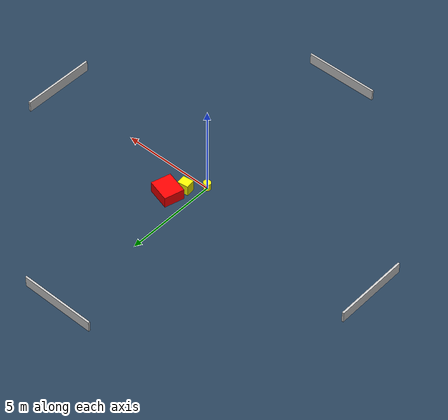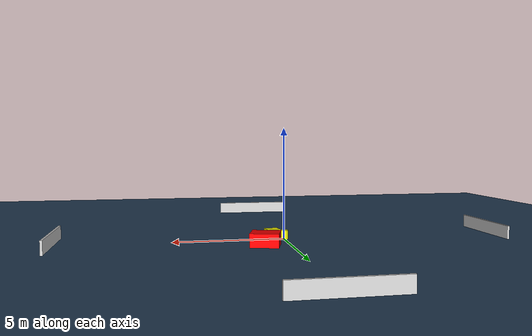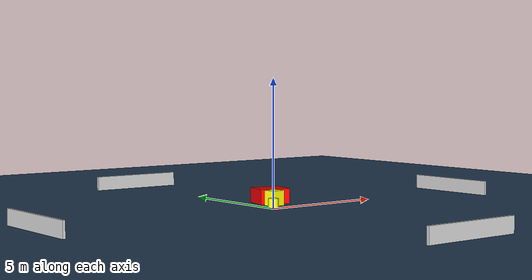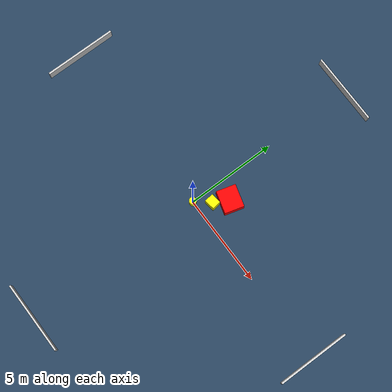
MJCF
<?xml version="1.0" ?>
<mujoco model="generated_environment">
  <option timestep="0.01" integrator="RK4" cone="elliptic"/>
  <default>
    <geom density="1"/>
  </default>
  <asset>
    <texture builtin="gradient" height="3072" name="skybox" rgb1="0.3 0.5 0.7" rgb2="0 0 0" type="skybox" width="512"/>
    <texture builtin="checker" height="300" name="groundplane" rgb1="0.2 0.3 0.4" rgb2="0.1 0.2 0.3" type="2d" width="300"/>
    <material name="groundplane" reflectance="0.2" texrepeat="5 5" texture="groundplane"/>
  </asset>
  <worldbody>
    <light dir="0 0 -1" directional="true" pos="0 0 1.5"/>
    <geom condim="3" friction="0.5 0.005 0.001" material="groundplane" name="floor" pos="0 0 0" size="0 0 0.05" type="plane"/>
    <body name="walls">
      <geom name="wall_1" condim="4" pos="-10.0 0.0 0.3" rgba="0.800000011920929 0.800000011920929 0.800000011920929 1.0" size="0.05 2.0 0.3" type="box"/>
      <geom name="wall_2" condim="4" pos="10.0 0.0 0.3" rgba="0.800000011920929 0.800000011920929 0.800000011920929 1.0" size="0.05 2.0 0.3" type="box"/>
      <geom name="wall_3" condim="4" pos="0.0 -10.0 0.3" rgba="0.800000011920929 0.800000011920929 0.800000011920929 1.0" size="2.0 0.05 0.3" type="box"/>
      <geom name="wall_4" condim="4" pos="0.0 10.0 0.3" rgba="0.800000011920929 0.800000011920929 0.800000011920929 1.0" size="2.0 0.05 0.3" type="box"/>
    </body>
    <body name="robot">
      <joint name="joint_x" type="slide" pos="0 0 0" axis="1 0 0"/>
      <joint name="joint_y" type="slide" pos="0 0 0" axis="0 1 0"/>
      <geom name="robot" type="cylinder" pos="0.0 0.0 0.2" size="0.2 0.2 0.0" mass="5.0" friction="1.0 0.005 0.0001" condim="4" rgba="1.0 1.0 0.0 1.0"/>
    </body>
    <body name="obstacle_1_movable">
      <geom name="obstacle_1_movable" condim="4" pos="0.6706105724978867 0.7755556933104213 0.3" euler="0 0 187.74503770310127" friction="0.0 0.005 0.001" rgba="1.0 1.0 0.0 1.0" size="0.2884577292806328 0.2501677642206662 0.3" type="box" mass="0.1"/>
      <joint type="free"/>
    </body>
    <body name="obstacle_2_static">
      <geom name="obstacle_2_static" condim="4" pos="1.0976953932714029 1.5778532393702451 0.3" euler="0 0 164.528561992523" friction="0.0 0.005 0.001" rgba="1.0 0.0 0.0 1.0" size="0.6210226567994181 0.5367925675342538 0.3" type="box"/>
    </body>
  </worldbody>
  <actuator>
    <motor name="actuator_x" joint="joint_x" gear="1" ctrlrange="-1 1"/>
    <motor name="actuator_y" joint="joint_y" gear="1" ctrlrange="-1 1"/>
  </actuator>
</mujoco>
